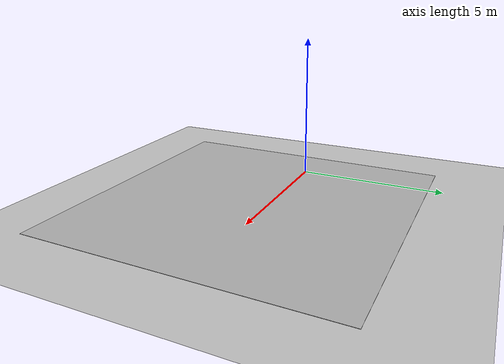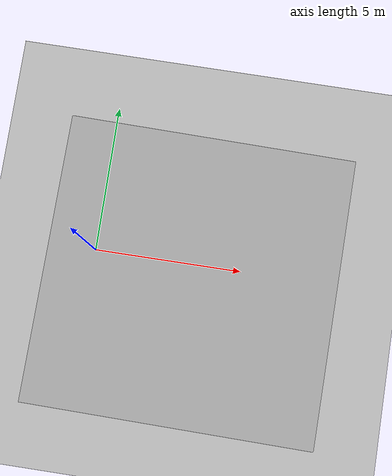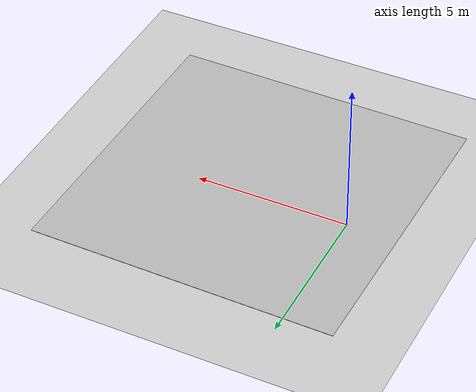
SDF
<sdf version="1.6">
 <world name="default">
  <scene><ambient>0.2 0.2 0.2 1</ambient><background>0 0 0 1</background><shadows>0</shadows></scene>
  <physics name="default_physics" default="0" type="ode">
   <ode>
    <solver>
     <type>quick</type>
     <iters>10</iters>
     <sor>1.3</sor>
     <use_dynamic_moi_rescaling>0</use_dynamic_moi_rescaling>
    </solver>
    <constraints>
     <cfm>0</cfm>
     <erp>0.2</erp>
     <contact_max_correcting_vel>100</contact_max_correcting_vel>
     <contact_surface_layer>0.001</contact_surface_layer>
    </constraints>
   </ode>
   <real_time_update_rate>1000</real_time_update_rate>
   <max_step_size>0.001</max_step_size>
   <real_time_factor>1</real_time_factor>
  </physics>
  <model name="ground_plane">
   <static>1</static>
   <link name="link">
    <collision name="collision">
     <geometry><plane><normal>0 0 1</normal><size>100 100</size></plane></geometry>
     <surface>
      <contact><collide_bitmask>65535</collide_bitmask></contact>
      <friction><ode><mu>100</mu><mu2>50</mu2></ode></friction>
     </surface>
    </collision>
    <visual name="visual">
     <cast_shadows>0</cast_shadows>
     <geometry><plane><normal>0 0 1</normal><size>100 100</size></plane></geometry>
     <material>
      <script><uri>file://media/materials/scripts/gazebo.material</uri><name>Gazebo/Grey</name></script>
     </material>
    </visual>
   </link>
  </model>
  <light name="my_light" type="directional">
   <pose>0 0 30 0 -0 0</pose>
   <diffuse>0.5 0.5 0.5 1</diffuse>
   <specular>0.1 0.1 0.1 1</specular>
   <attenuation><range>200</range></attenuation>
   <direction>0 0 -1</direction>
   <cast_shadows>0</cast_shadows>
  </light>
  <gravity>0 0 -9.8</gravity>
  <magnetic_field>6e-06 2.3e-05 -4.2e-05</magnetic_field>
  <atmosphere type="adiabatic"/>
  <audio><device>default</device></audio>
  <spherical_coordinates>
   <surface_model>EARTH_WGS84</surface_model>
   <latitude_deg>0</latitude_deg>
   <longitude_deg>0</longitude_deg>
   <elevation>0</elevation>
   <heading_deg>0</heading_deg>
  </spherical_coordinates>
  <model name="office_small">
   <model name="Floor">
    <link name="main">
     <pose>0.795 0.05 0.01 0 -0 0</pose>
     <collision name="main_Collision"><geometry><box><size>10 10 0.01</size></box></geometry></collision>
     <visual name="main_Visual">
      <geometry><box><size>10 10 0.01</size></box></geometry>
      <material>
       <script>
        <uri>model://office_small/materials/scripts</uri>
        <uri>model://office_small/materials/textures</uri>
        <name>floor</name>
       </script>
      </material>
     </visual>
    </link>
    <static>1</static>
   </model>
   <static>0</static>
   <pose>3.30174 0.266404 0 0 0 -1.58427</pose>
  </model>
 </world>
</sdf>
